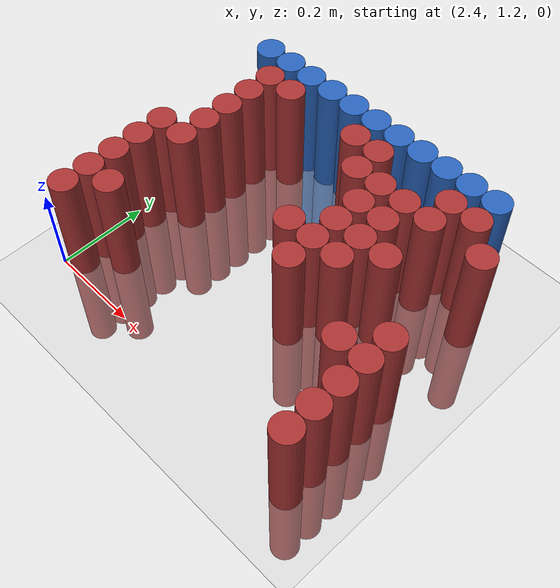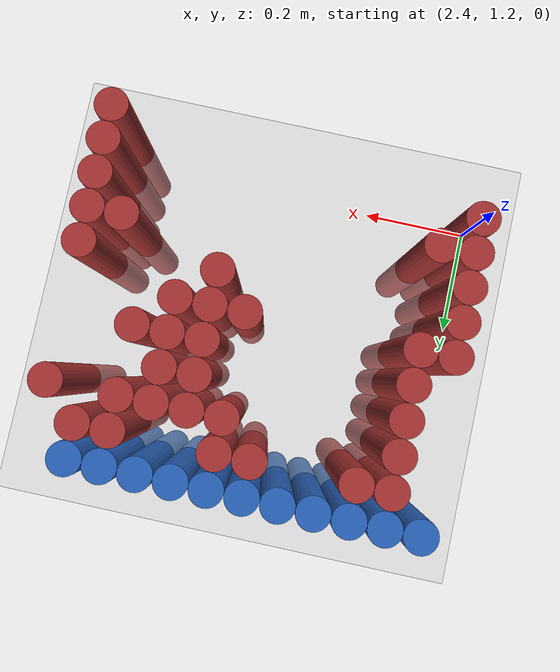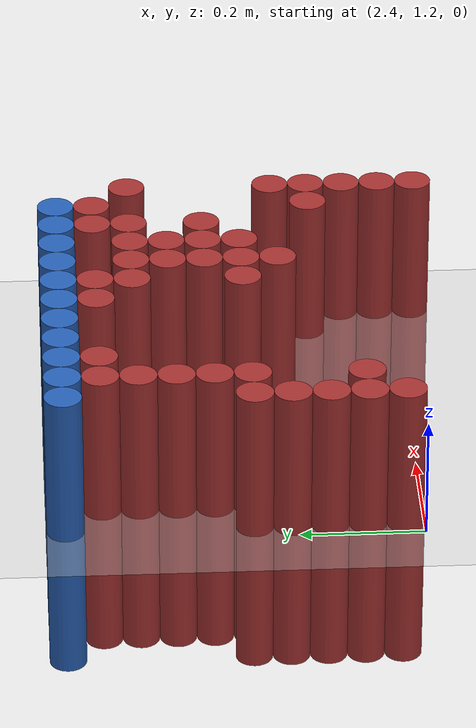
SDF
<sdf version="1.6">
 <world name="default">
  <model name="ground_plane">
   <static>1</static>
   <link name="link">
    <collision name="collision">
     <geometry><plane><normal>0 0 1</normal><size>100 100</size></plane></geometry>
     <surface><friction><ode><mu>100</mu><mu2>50</mu2></ode></friction></surface>
    </collision>
    <visual name="visual">
     <cast_shadows>0</cast_shadows>
     <geometry><plane><normal>0 0 1</normal><size>100 100</size></plane></geometry>
     <material>
      <script><uri>file://media/materials/scripts/gazebo.material</uri><name>Gazebo/Grey</name></script>
     </material>
    </visual>
   </link>
  </model>
  <model name="unit_cylinder_101">
   <static>1</static>
   <pose>2.430000 1.770000 0.000000 0.000000 0.000000 0.000000</pose>
   <link name="link">
    <inertial>
     <mass>1</mass>
     <inertia><ixx>0.145833</ixx><ixy>0</ixy><ixz>0</ixz><iyy>0.145833</iyy><iyz>0</iyz><izz>0.125</izz></inertia>
    </inertial>
    <collision name="collision">
     <geometry><cylinder><radius>0.030000</radius><length>0.5</length></cylinder></geometry>
    </collision>
    <visual name="visual">
     <geometry><cylinder><radius>0.030000</radius><length>0.5</length></cylinder></geometry>
     <material>
      <ambient>0.152000 0.379000 0.720000 1</ambient>
      <diffuse>0.152000 0.379000 0.720000 1</diffuse>
     </material>
     <material>
      <script><name>Gazebo/Grey</name><uri>file://media/materials/scripts/gazebo.material</uri></script>
     </material>
    </visual>
   </link>
  </model>
  <model name="unit_cylinder_102">
   <static>1</static>
   <pose>2.490000 1.770000 0.000000 0.000000 0.000000 0.000000</pose>
   <link name="link">
    <inertial>
     <mass>1</mass>
     <inertia><ixx>0.145833</ixx><ixy>0</ixy><ixz>0</ixz><iyy>0.145833</iyy><iyz>0</iyz><izz>0.125</izz></inertia>
    </inertial>
    <collision name="collision">
     <geometry><cylinder><radius>0.030000</radius><length>0.5</length></cylinder></geometry>
    </collision>
    <visual name="visual">
     <geometry><cylinder><radius>0.030000</radius><length>0.5</length></cylinder></geometry>
     <material>
      <ambient>0.152000 0.379000 0.720000 1</ambient>
      <diffuse>0.152000 0.379000 0.720000 1</diffuse>
     </material>
     <material>
      <script><name>Gazebo/Grey</name><uri>file://media/materials/scripts/gazebo.material</uri></script>
     </material>
    </visual>
   </link>
  </model>
  <model name="unit_cylinder_103">
   <static>1</static>
   <pose>2.550000 1.770000 0.000000 0.000000 0.000000 0.000000</pose>
   <link name="link">
    <inertial>
     <mass>1</mass>
     <inertia><ixx>0.145833</ixx><ixy>0</ixy><ixz>0</ixz><iyy>0.145833</iyy><iyz>0</iyz><izz>0.125</izz></inertia>
    </inertial>
    <collision name="collision">
     <geometry><cylinder><radius>0.030000</radius><length>0.5</length></cylinder></geometry>
    </collision>
    <visual name="visual">
     <geometry><cylinder><radius>0.030000</radius><length>0.5</length></cylinder></geometry>
     <material>
      <ambient>0.152000 0.379000 0.720000 1</ambient>
      <diffuse>0.152000 0.379000 0.720000 1</diffuse>
     </material>
     <material>
      <script><name>Gazebo/Grey</name><uri>file://media/materials/scripts/gazebo.material</uri></script>
     </material>
    </visual>
   </link>
  </model>
  <model name="unit_cylinder_104">
   <static>1</static>
   <pose>2.610000 1.770000 0.000000 0.000000 0.000000 0.000000</pose>
   <link name="link">
    <inertial>
     <mass>1</mass>
     <inertia><ixx>0.145833</ixx><ixy>0</ixy><ixz>0</ixz><iyy>0.145833</iyy><iyz>0</iyz><izz>0.125</izz></inertia>
    </inertial>
    <collision name="collision">
     <geometry><cylinder><radius>0.030000</radius><length>0.5</length></cylinder></geometry>
    </collision>
    <visual name="visual">
     <geometry><cylinder><radius>0.030000</radius><length>0.5</length></cylinder></geometry>
     <material>
      <ambient>0.152000 0.379000 0.720000 1</ambient>
      <diffuse>0.152000 0.379000 0.720000 1</diffuse>
     </material>
     <material>
      <script><name>Gazebo/Grey</name><uri>file://media/materials/scripts/gazebo.material</uri></script>
     </material>
    </visual>
   </link>
  </model>
  <model name="unit_cylinder_105">
   <static>1</static>
   <pose>2.670000 1.770000 0.000000 0.000000 0.000000 0.000000</pose>
   <link name="link">
    <inertial>
     <mass>1</mass>
     <inertia><ixx>0.145833</ixx><ixy>0</ixy><ixz>0</ixz><iyy>0.145833</iyy><iyz>0</iyz><izz>0.125</izz></inertia>
    </inertial>
    <collision name="collision">
     <geometry><cylinder><radius>0.030000</radius><length>0.5</length></cylinder></geometry>
    </collision>
    <visual name="visual">
     <geometry><cylinder><radius>0.030000</radius><length>0.5</length></cylinder></geometry>
     <material>
      <ambient>0.152000 0.379000 0.720000 1</ambient>
      <diffuse>0.152000 0.379000 0.720000 1</diffuse>
     </material>
     <material>
      <script><name>Gazebo/Grey</name><uri>file://media/materials/scripts/gazebo.material</uri></script>
     </material>
    </visual>
   </link>
  </model>
  <model name="unit_cylinder_106">
   <static>1</static>
   <pose>2.730000 1.770000 0.000000 0.000000 0.000000 0.000000</pose>
   <link name="link">
    <inertial>
     <mass>1</mass>
     <inertia><ixx>0.145833</ixx><ixy>0</ixy><ixz>0</ixz><iyy>0.145833</iyy><iyz>0</iyz><izz>0.125</izz></inertia>
    </inertial>
    <collision name="collision">
     <geometry><cylinder><radius>0.030000</radius><length>0.5</length></cylinder></geometry>
    </collision>
    <visual name="visual">
     <geometry><cylinder><radius>0.030000</radius><length>0.5</length></cylinder></geometry>
     <material>
      <ambient>0.152000 0.379000 0.720000 1</ambient>
      <diffuse>0.152000 0.379000 0.720000 1</diffuse>
     </material>
     <material>
      <script><name>Gazebo/Grey</name><uri>file://media/materials/scripts/gazebo.material</uri></script>
     </material>
    </visual>
   </link>
  </model>
  <model name="unit_cylinder_107">
   <static>1</static>
   <pose>2.790000 1.770000 0.000000 0.000000 0.000000 0.000000</pose>
   <link name="link">
    <inertial>
     <mass>1</mass>
     <inertia><ixx>0.145833</ixx><ixy>0</ixy><ixz>0</ixz><iyy>0.145833</iyy><iyz>0</iyz><izz>0.125</izz></inertia>
    </inertial>
    <collision name="collision">
     <geometry><cylinder><radius>0.030000</radius><length>0.5</length></cylinder></geometry>
    </collision>
    <visual name="visual">
     <geometry><cylinder><radius>0.030000</radius><length>0.5</length></cylinder></geometry>
     <material>
      <ambient>0.152000 0.379000 0.720000 1</ambient>
      <diffuse>0.152000 0.379000 0.720000 1</diffuse>
     </material>
     <material>
      <script><name>Gazebo/Grey</name><uri>file://media/materials/scripts/gazebo.material</uri></script>
     </material>
    </visual>
   </link>
  </model>
  <model name="unit_cylinder_108">
   <static>1</static>
   <pose>2.850000 1.770000 0.000000 0.000000 0.000000 0.000000</pose>
   <link name="link">
    <inertial>
     <mass>1</mass>
     <inertia><ixx>0.145833</ixx><ixy>0</ixy><ixz>0</ixz><iyy>0.145833</iyy><iyz>0</iyz><izz>0.125</izz></inertia>
    </inertial>
    <collision name="collision">
     <geometry><cylinder><radius>0.030000</radius><length>0.5</length></cylinder></geometry>
    </collision>
    <visual name="visual">
     <geometry><cylinder><radius>0.030000</radius><length>0.5</length></cylinder></geometry>
     <material>
      <ambient>0.152000 0.379000 0.720000 1</ambient>
      <diffuse>0.152000 0.379000 0.720000 1</diffuse>
     </material>
     <material>
      <script><name>Gazebo/Grey</name><uri>file://media/materials/scripts/gazebo.material</uri></script>
     </material>
    </visual>
   </link>
  </model>
  <model name="unit_cylinder_109">
   <static>1</static>
   <pose>2.910000 1.770000 0.000000 0.000000 0.000000 0.000000</pose>
   <link name="link">
    <inertial>
     <mass>1</mass>
     <inertia><ixx>0.145833</ixx><ixy>0</ixy><ixz>0</ixz><iyy>0.145833</iyy><iyz>0</iyz><izz>0.125</izz></inertia>
    </inertial>
    <collision name="collision">
     <geometry><cylinder><radius>0.030000</radius><length>0.5</length></cylinder></geometry>
    </collision>
    <visual name="visual">
     <geometry><cylinder><radius>0.030000</radius><length>0.5</length></cylinder></geometry>
     <material>
      <ambient>0.152000 0.379000 0.720000 1</ambient>
      <diffuse>0.152000 0.379000 0.720000 1</diffuse>
     </material>
     <material>
      <script><name>Gazebo/Grey</name><uri>file://media/materials/scripts/gazebo.material</uri></script>
     </material>
    </visual>
   </link>
  </model>
  <model name="unit_cylinder_110">
   <static>1</static>
   <pose>2.970000 1.770000 0.000000 0.000000 0.000000 0.000000</pose>
   <link name="link">
    <inertial>
     <mass>1</mass>
     <inertia><ixx>0.145833</ixx><ixy>0</ixy><ixz>0</ixz><iyy>0.145833</iyy><iyz>0</iyz><izz>0.125</izz></inertia>
    </inertial>
    <collision name="collision">
     <geometry><cylinder><radius>0.030000</radius><length>0.5</length></cylinder></geometry>
    </collision>
    <visual name="visual">
     <geometry><cylinder><radius>0.030000</radius><length>0.5</length></cylinder></geometry>
     <material>
      <ambient>0.152000 0.379000 0.720000 1</ambient>
      <diffuse>0.152000 0.379000 0.720000 1</diffuse>
     </material>
     <material>
      <script><name>Gazebo/Grey</name><uri>file://media/materials/scripts/gazebo.material</uri></script>
     </material>
    </visual>
   </link>
  </model>
  <model name="unit_cylinder_111">
   <static>1</static>
   <pose>3.030000 1.770000 0.000000 0.000000 0.000000 0.000000</pose>
   <link name="link">
    <inertial>
     <mass>1</mass>
     <inertia><ixx>0.145833</ixx><ixy>0</ixy><ixz>0</ixz><iyy>0.145833</iyy><iyz>0</iyz><izz>0.125</izz></inertia>
    </inertial>
    <collision name="collision">
     <geometry><cylinder><radius>0.030000</radius><length>0.5</length></cylinder></geometry>
    </collision>
    <visual name="visual">
     <geometry><cylinder><radius>0.030000</radius><length>0.5</length></cylinder></geometry>
     <material>
      <ambient>0.152000 0.379000 0.720000 1</ambient>
      <diffuse>0.152000 0.379000 0.720000 1</diffuse>
     </material>
     <material>
      <script><name>Gazebo/Grey</name><uri>file://media/materials/scripts/gazebo.material</uri></script>
     </material>
    </visual>
   </link>
  </model>
  <model name="unit_cylinder_126">
   <static>1</static>
   <pose>2.490000 1.710000 0.000000 0.000000 0.000000 0.000000</pose>
   <link name="link">
    <inertial>
     <mass>1</mass>
     <inertia><ixx>0.145833</ixx><ixy>0</ixy><ixz>0</ixz><iyy>0.145833</iyy><iyz>0</iyz><izz>0.125</izz></inertia>
    </inertial>
    <collision name="collision">
     <geometry><cylinder><radius>0.030000</radius><length>0.5</length></cylinder></geometry>
    </collision>
    <visual name="visual">
     <geometry><cylinder><radius>0.030000</radius><length>0.5</length></cylinder></geometry>
     <material>
      <ambient>0.648000 0.192000 0.192000 1</ambient>
      <diffuse>0.648000 0.192000 0.192000 1</diffuse>
     </material>
     <material>
      <script><name>Gazebo/Grey</name><uri>file://media/materials/scripts/gazebo.material</uri></script>
     </material>
    </visual>
   </link>
  </model>
  <model name="unit_cylinder_127">
   <static>1</static>
   <pose>2.550000 1.710000 0.000000 0.000000 0.000000 0.000000</pose>
   <link name="link">
    <inertial>
     <mass>1</mass>
     <inertia><ixx>0.145833</ixx><ixy>0</ixy><ixz>0</ixz><iyy>0.145833</iyy><iyz>0</iyz><izz>0.125</izz></inertia>
    </inertial>
    <collision name="collision">
     <geometry><cylinder><radius>0.030000</radius><length>0.5</length></cylinder></geometry>
    </collision>
    <visual name="visual">
     <geometry><cylinder><radius>0.030000</radius><length>0.5</length></cylinder></geometry>
     <material>
      <ambient>0.648000 0.192000 0.192000 1</ambient>
      <diffuse>0.648000 0.192000 0.192000 1</diffuse>
     </material>
     <material>
      <script><name>Gazebo/Grey</name><uri>file://media/materials/scripts/gazebo.material</uri></script>
     </material>
    </visual>
   </link>
  </model>
  <model name="unit_cylinder_128">
   <static>1</static>
   <pose>2.730000 1.710000 0.000000 0.000000 0.000000 0.000000</pose>
   <link name="link">
    <inertial>
     <mass>1</mass>
     <inertia><ixx>0.145833</ixx><ixy>0</ixy><ixz>0</ixz><iyy>0.145833</iyy><iyz>0</iyz><izz>0.125</izz></inertia>
    </inertial>
    <collision name="collision">
     <geometry><cylinder><radius>0.030000</radius><length>0.5</length></cylinder></geometry>
    </collision>
    <visual name="visual">
     <geometry><cylinder><radius>0.030000</radius><length>0.5</length></cylinder></geometry>
     <material>
      <ambient>0.648000 0.192000 0.192000 1</ambient>
      <diffuse>0.648000 0.192000 0.192000 1</diffuse>
     </material>
     <material>
      <script><name>Gazebo/Grey</name><uri>file://media/materials/scripts/gazebo.material</uri></script>
     </material>
    </visual>
   </link>
  </model>
  <model name="unit_cylinder_129">
   <static>1</static>
   <pose>2.790000 1.710000 0.000000 0.000000 0.000000 0.000000</pose>
   <link name="link">
    <inertial>
     <mass>1</mass>
     <inertia><ixx>0.145833</ixx><ixy>0</ixy><ixz>0</ixz><iyy>0.145833</iyy><iyz>0</iyz><izz>0.125</izz></inertia>
    </inertial>
    <collision name="collision">
     <geometry><cylinder><radius>0.030000</radius><length>0.5</length></cylinder></geometry>
    </collision>
    <visual name="visual">
     <geometry><cylinder><radius>0.030000</radius><length>0.5</length></cylinder></geometry>
     <material>
      <ambient>0.648000 0.192000 0.192000 1</ambient>
      <diffuse>0.648000 0.192000 0.192000 1</diffuse>
     </material>
     <material>
      <script><name>Gazebo/Grey</name><uri>file://media/materials/scripts/gazebo.material</uri></script>
     </material>
    </visual>
   </link>
  </model>
  <model name="unit_cylinder_130">
   <static>1</static>
   <pose>2.970000 1.710000 0.000000 0.000000 0.000000 0.000000</pose>
   <link name="link">
    <inertial>
     <mass>1</mass>
     <inertia><ixx>0.145833</ixx><ixy>0</ixy><ixz>0</ixz><iyy>0.145833</iyy><iyz>0</iyz><izz>0.125</izz></inertia>
    </inertial>
    <collision name="collision">
     <geometry><cylinder><radius>0.030000</radius><length>0.5</length></cylinder></geometry>
    </collision>
    <visual name="visual">
     <geometry><cylinder><radius>0.030000</radius><length>0.5</length></cylinder></geometry>
     <material>
      <ambient>0.648000 0.192000 0.192000 1</ambient>
      <diffuse>0.648000 0.192000 0.192000 1</diffuse>
     </material>
     <material>
      <script><name>Gazebo/Grey</name><uri>file://media/materials/scripts/gazebo.material</uri></script>
     </material>
    </visual>
   </link>
  </model>
  <model name="unit_cylinder_131">
   <static>1</static>
   <pose>3.030000 1.710000 0.000000 0.000000 0.000000 0.000000</pose>
   <link name="link">
    <inertial>
     <mass>1</mass>
     <inertia><ixx>0.145833</ixx><ixy>0</ixy><ixz>0</ixz><iyy>0.145833</iyy><iyz>0</iyz><izz>0.125</izz></inertia>
    </inertial>
    <collision name="collision">
     <geometry><cylinder><radius>0.030000</radius><length>0.5</length></cylinder></geometry>
    </collision>
    <visual name="visual">
     <geometry><cylinder><radius>0.030000</radius><length>0.5</length></cylinder></geometry>
     <material>
      <ambient>0.648000 0.192000 0.192000 1</ambient>
      <diffuse>0.648000 0.192000 0.192000 1</diffuse>
     </material>
     <material>
      <script><name>Gazebo/Grey</name><uri>file://media/materials/scripts/gazebo.material</uri></script>
     </material>
    </visual>
   </link>
  </model>
  <model name="unit_cylinder_135">
   <static>1</static>
   <pose>2.490000 1.650000 0.000000 0.000000 0.000000 0.000000</pose>
   <link name="link">
    <inertial>
     <mass>1</mass>
     <inertia><ixx>0.145833</ixx><ixy>0</ixy><ixz>0</ixz><iyy>0.145833</iyy><iyz>0</iyz><izz>0.125</izz></inertia>
    </inertial>
    <collision name="collision">
     <geometry><cylinder><radius>0.030000</radius><length>0.5</length></cylinder></geometry>
    </collision>
    <visual name="visual">
     <geometry><cylinder><radius>0.030000</radius><length>0.5</length></cylinder></geometry>
     <material>
      <ambient>0.648000 0.192000 0.192000 1</ambient>
      <diffuse>0.648000 0.192000 0.192000 1</diffuse>
     </material>
     <material>
      <script><name>Gazebo/Grey</name><uri>file://media/materials/scripts/gazebo.material</uri></script>
     </material>
    </visual>
   </link>
  </model>
  <model name="unit_cylinder_136">
   <static>1</static>
   <pose>2.790000 1.650000 0.000000 0.000000 0.000000 0.000000</pose>
   <link name="link">
    <inertial>
     <mass>1</mass>
     <inertia><ixx>0.145833</ixx><ixy>0</ixy><ixz>0</ixz><iyy>0.145833</iyy><iyz>0</iyz><izz>0.125</izz></inertia>
    </inertial>
    <collision name="collision">
     <geometry><cylinder><radius>0.030000</radius><length>0.5</length></cylinder></geometry>
    </collision>
    <visual name="visual">
     <geometry><cylinder><radius>0.030000</radius><length>0.5</length></cylinder></geometry>
     <material>
      <ambient>0.648000 0.192000 0.192000 1</ambient>
      <diffuse>0.648000 0.192000 0.192000 1</diffuse>
     </material>
     <material>
      <script><name>Gazebo/Grey</name><uri>file://media/materials/scripts/gazebo.material</uri></script>
     </material>
    </visual>
   </link>
  </model>
  <model name="unit_cylinder_137">
   <static>1</static>
   <pose>2.850000 1.650000 0.000000 0.000000 0.000000 0.000000</pose>
   <link name="link">
    <inertial>
     <mass>1</mass>
     <inertia><ixx>0.145833</ixx><ixy>0</ixy><ixz>0</ixz><iyy>0.145833</iyy><iyz>0</iyz><izz>0.125</izz></inertia>
    </inertial>
    <collision name="collision">
     <geometry><cylinder><radius>0.030000</radius><length>0.5</length></cylinder></geometry>
    </collision>
    <visual name="visual">
     <geometry><cylinder><radius>0.030000</radius><length>0.5</length></cylinder></geometry>
     <material>
      <ambient>0.648000 0.192000 0.192000 1</ambient>
      <diffuse>0.648000 0.192000 0.192000 1</diffuse>
     </material>
     <material>
      <script><name>Gazebo/Grey</name><uri>file://media/materials/scripts/gazebo.material</uri></script>
     </material>
    </visual>
   </link>
  </model>
  <model name="unit_cylinder_138">
   <static>1</static>
   <pose>2.910000 1.650000 0.000000 0.000000 0.000000 0.000000</pose>
   <link name="link">
    <inertial>
     <mass>1</mass>
     <inertia><ixx>0.145833</ixx><ixy>0</ixy><ixz>0</ixz><iyy>0.145833</iyy><iyz>0</iyz><izz>0.125</izz></inertia>
    </inertial>
    <collision name="collision">
     <geometry><cylinder><radius>0.030000</radius><length>0.5</length></cylinder></geometry>
    </collision>
    <visual name="visual">
     <geometry><cylinder><radius>0.030000</radius><length>0.5</length></cylinder></geometry>
     <material>
      <ambient>0.648000 0.192000 0.192000 1</ambient>
      <diffuse>0.648000 0.192000 0.192000 1</diffuse>
     </material>
     <material>
      <script><name>Gazebo/Grey</name><uri>file://media/materials/scripts/gazebo.material</uri></script>
     </material>
    </visual>
   </link>
  </model>
  <model name="unit_cylinder_139">
   <static>1</static>
   <pose>2.970000 1.650000 0.000000 0.000000 0.000000 0.000000</pose>
   <link name="link">
    <inertial>
     <mass>1</mass>
     <inertia><ixx>0.145833</ixx><ixy>0</ixy><ixz>0</ixz><iyy>0.145833</iyy><iyz>0</iyz><izz>0.125</izz></inertia>
    </inertial>
    <collision name="collision">
     <geometry><cylinder><radius>0.030000</radius><length>0.5</length></cylinder></geometry>
    </collision>
    <visual name="visual">
     <geometry><cylinder><radius>0.030000</radius><length>0.5</length></cylinder></geometry>
     <material>
      <ambient>0.648000 0.192000 0.192000 1</ambient>
      <diffuse>0.648000 0.192000 0.192000 1</diffuse>
     </material>
     <material>
      <script><name>Gazebo/Grey</name><uri>file://media/materials/scripts/gazebo.material</uri></script>
     </material>
    </visual>
   </link>
  </model>
  <model name="unit_cylinder_140">
   <static>1</static>
   <pose>3.090000 1.650000 0.000000 0.000000 0.000000 0.000000</pose>
   <link name="link">
    <inertial>
     <mass>1</mass>
     <inertia><ixx>0.145833</ixx><ixy>0</ixy><ixz>0</ixz><iyy>0.145833</iyy><iyz>0</iyz><izz>0.125</izz></inertia>
    </inertial>
    <collision name="collision">
     <geometry><cylinder><radius>0.030000</radius><length>0.5</length></cylinder></geometry>
    </collision>
    <visual name="visual">
     <geometry><cylinder><radius>0.030000</radius><length>0.5</length></cylinder></geometry>
     <material>
      <ambient>0.648000 0.192000 0.192000 1</ambient>
      <diffuse>0.648000 0.192000 0.192000 1</diffuse>
     </material>
     <material>
      <script><name>Gazebo/Grey</name><uri>file://media/materials/scripts/gazebo.material</uri></script>
     </material>
    </visual>
   </link>
  </model>
  <model name="unit_cylinder_144">
   <static>1</static>
   <pose>2.490000 1.590000 0.000000 0.000000 0.000000 0.000000</pose>
   <link name="link">
    <inertial>
     <mass>1</mass>
     <inertia><ixx>0.145833</ixx><ixy>0</ixy><ixz>0</ixz><iyy>0.145833</iyy><iyz>0</iyz><izz>0.125</izz></inertia>
    </inertial>
    <collision name="collision">
     <geometry><cylinder><radius>0.030000</radius><length>0.5</length></cylinder></geometry>
    </collision>
    <visual name="visual">
     <geometry><cylinder><radius>0.030000</radius><length>0.5</length></cylinder></geometry>
     <material>
      <ambient>0.648000 0.192000 0.192000 1</ambient>
      <diffuse>0.648000 0.192000 0.192000 1</diffuse>
     </material>
     <material>
      <script><name>Gazebo/Grey</name><uri>file://media/materials/scripts/gazebo.material</uri></script>
     </material>
    </visual>
   </link>
  </model>
  <model name="unit_cylinder_145">
   <static>1</static>
   <pose>2.850000 1.590000 0.000000 0.000000 0.000000 0.000000</pose>
   <link name="link">
    <inertial>
     <mass>1</mass>
     <inertia><ixx>0.145833</ixx><ixy>0</ixy><ixz>0</ixz><iyy>0.145833</iyy><iyz>0</iyz><izz>0.125</izz></inertia>
    </inertial>
    <collision name="collision">
     <geometry><cylinder><radius>0.030000</radius><length>0.5</length></cylinder></geometry>
    </collision>
    <visual name="visual">
     <geometry><cylinder><radius>0.030000</radius><length>0.5</length></cylinder></geometry>
     <material>
      <ambient>0.648000 0.192000 0.192000 1</ambient>
      <diffuse>0.648000 0.192000 0.192000 1</diffuse>
     </material>
     <material>
      <script><name>Gazebo/Grey</name><uri>file://media/materials/scripts/gazebo.material</uri></script>
     </material>
    </visual>
   </link>
  </model>
  <model name="unit_cylinder_146">
   <static>1</static>
   <pose>2.910000 1.590000 0.000000 0.000000 0.000000 0.000000</pose>
   <link name="link">
    <inertial>
     <mass>1</mass>
     <inertia><ixx>0.145833</ixx><ixy>0</ixy><ixz>0</ixz><iyy>0.145833</iyy><iyz>0</iyz><izz>0.125</izz></inertia>
    </inertial>
    <collision name="collision">
     <geometry><cylinder><radius>0.030000</radius><length>0.5</length></cylinder></geometry>
    </collision>
    <visual name="visual">
     <geometry><cylinder><radius>0.030000</radius><length>0.5</length></cylinder></geometry>
     <material>
      <ambient>0.648000 0.192000 0.192000 1</ambient>
      <diffuse>0.648000 0.192000 0.192000 1</diffuse>
     </material>
     <material>
      <script><name>Gazebo/Grey</name><uri>file://media/materials/scripts/gazebo.material</uri></script>
     </material>
    </visual>
   </link>
  </model>
  <model name="unit_cylinder_153">
   <static>1</static>
   <pose>2.490000 1.530000 0.000000 0.000000 0.000000 0.000000</pose>
   <link name="link">
    <inertial>
     <mass>1</mass>
     <inertia><ixx>0.145833</ixx><ixy>0</ixy><ixz>0</ixz><iyy>0.145833</iyy><iyz>0</iyz><izz>0.125</izz></inertia>
    </inertial>
    <collision name="collision">
     <geometry><cylinder><radius>0.030000</radius><length>0.5</length></cylinder></geometry>
    </collision>
    <visual name="visual">
     <geometry><cylinder><radius>0.030000</radius><length>0.5</length></cylinder></geometry>
     <material>
      <ambient>0.648000 0.192000 0.192000 1</ambient>
      <diffuse>0.648000 0.192000 0.192000 1</diffuse>
     </material>
     <material>
      <script><name>Gazebo/Grey</name><uri>file://media/materials/scripts/gazebo.material</uri></script>
     </material>
    </visual>
   </link>
  </model>
  <model name="unit_cylinder_154">
   <static>1</static>
   <pose>2.850000 1.530000 0.000000 0.000000 0.000000 0.000000</pose>
   <link name="link">
    <inertial>
     <mass>1</mass>
     <inertia><ixx>0.145833</ixx><ixy>0</ixy><ixz>0</ixz><iyy>0.145833</iyy><iyz>0</iyz><izz>0.125</izz></inertia>
    </inertial>
    <collision name="collision">
     <geometry><cylinder><radius>0.030000</radius><length>0.5</length></cylinder></geometry>
    </collision>
    <visual name="visual">
     <geometry><cylinder><radius>0.030000</radius><length>0.5</length></cylinder></geometry>
     <material>
      <ambient>0.648000 0.192000 0.192000 1</ambient>
      <diffuse>0.648000 0.192000 0.192000 1</diffuse>
     </material>
     <material>
      <script><name>Gazebo/Grey</name><uri>file://media/materials/scripts/gazebo.material</uri></script>
     </material>
    </visual>
   </link>
  </model>
  <model name="unit_cylinder_155">
   <static>1</static>
   <pose>2.910000 1.530000 0.000000 0.000000 0.000000 0.000000</pose>
   <link name="link">
    <inertial>
     <mass>1</mass>
     <inertia><ixx>0.145833</ixx><ixy>0</ixy><ixz>0</ixz><iyy>0.145833</iyy><iyz>0</iyz><izz>0.125</izz></inertia>
    </inertial>
    <collision name="collision">
     <geometry><cylinder><radius>0.030000</radius><length>0.5</length></cylinder></geometry>
    </collision>
    <visual name="visual">
     <geometry><cylinder><radius>0.030000</radius><length>0.5</length></cylinder></geometry>
     <material>
      <ambient>0.648000 0.192000 0.192000 1</ambient>
      <diffuse>0.648000 0.192000 0.192000 1</diffuse>
     </material>
     <material>
      <script><name>Gazebo/Grey</name><uri>file://media/materials/scripts/gazebo.material</uri></script>
     </material>
    </visual>
   </link>
  </model>
  <model name="unit_cylinder_156">
   <static>1</static>
   <pose>2.970000 1.530000 0.000000 0.000000 0.000000 0.000000</pose>
   <link name="link">
    <inertial>
     <mass>1</mass>
     <inertia><ixx>0.145833</ixx><ixy>0</ixy><ixz>0</ixz><iyy>0.145833</iyy><iyz>0</iyz><izz>0.125</izz></inertia>
    </inertial>
    <collision name="collision">
     <geometry><cylinder><radius>0.030000</radius><length>0.5</length></cylinder></geometry>
    </collision>
    <visual name="visual">
     <geometry><cylinder><radius>0.030000</radius><length>0.5</length></cylinder></geometry>
     <material>
      <ambient>0.648000 0.192000 0.192000 1</ambient>
      <diffuse>0.648000 0.192000 0.192000 1</diffuse>
     </material>
     <material>
      <script><name>Gazebo/Grey</name><uri>file://media/materials/scripts/gazebo.material</uri></script>
     </material>
    </visual>
   </link>
  </model>
  <model name="unit_cylinder_162">
   <static>1</static>
   <pose>2.430000 1.470000 0.000000 0.000000 0.000000 0.000000</pose>
   <link name="link">
    <inertial>
     <mass>1</mass>
     <inertia><ixx>0.145833</ixx><ixy>0</ixy><ixz>0</ixz><iyy>0.145833</iyy><iyz>0</iyz><izz>0.125</izz></inertia>
    </inertial>
    <collision name="collision">
     <geometry><cylinder><radius>0.030000</radius><length>0.5</length></cylinder></geometry>
    </collision>
    <visual name="visual">
     <geometry><cylinder><radius>0.030000</radius><length>0.5</length></cylinder></geometry>
     <material>
      <ambient>0.648000 0.192000 0.192000 1</ambient>
      <diffuse>0.648000 0.192000 0.192000 1</diffuse>
     </material>
     <material>
      <script><name>Gazebo/Grey</name><uri>file://media/materials/scripts/gazebo.material</uri></script>
     </material>
    </visual>
   </link>
  </model>
  <model name="unit_cylinder_163">
   <static>1</static>
   <pose>2.490000 1.470000 0.000000 0.000000 0.000000 0.000000</pose>
   <link name="link">
    <inertial>
     <mass>1</mass>
     <inertia><ixx>0.145833</ixx><ixy>0</ixy><ixz>0</ixz><iyy>0.145833</iyy><iyz>0</iyz><izz>0.125</izz></inertia>
    </inertial>
    <collision name="collision">
     <geometry><cylinder><radius>0.030000</radius><length>0.5</length></cylinder></geometry>
    </collision>
    <visual name="visual">
     <geometry><cylinder><radius>0.030000</radius><length>0.5</length></cylinder></geometry>
     <material>
      <ambient>0.648000 0.192000 0.192000 1</ambient>
      <diffuse>0.648000 0.192000 0.192000 1</diffuse>
     </material>
     <material>
      <script><name>Gazebo/Grey</name><uri>file://media/materials/scripts/gazebo.material</uri></script>
     </material>
    </visual>
   </link>
  </model>
  <model name="unit_cylinder_164">
   <static>1</static>
   <pose>2.790000 1.470000 0.000000 0.000000 0.000000 0.000000</pose>
   <link name="link">
    <inertial>
     <mass>1</mass>
     <inertia><ixx>0.145833</ixx><ixy>0</ixy><ixz>0</ixz><iyy>0.145833</iyy><iyz>0</iyz><izz>0.125</izz></inertia>
    </inertial>
    <collision name="collision">
     <geometry><cylinder><radius>0.030000</radius><length>0.5</length></cylinder></geometry>
    </collision>
    <visual name="visual">
     <geometry><cylinder><radius>0.030000</radius><length>0.5</length></cylinder></geometry>
     <material>
      <ambient>0.648000 0.192000 0.192000 1</ambient>
      <diffuse>0.648000 0.192000 0.192000 1</diffuse>
     </material>
     <material>
      <script><name>Gazebo/Grey</name><uri>file://media/materials/scripts/gazebo.material</uri></script>
     </material>
    </visual>
   </link>
  </model>
  <model name="unit_cylinder_165">
   <static>1</static>
   <pose>2.850000 1.470000 0.000000 0.000000 0.000000 0.000000</pose>
   <link name="link">
    <inertial>
     <mass>1</mass>
     <inertia><ixx>0.145833</ixx><ixy>0</ixy><ixz>0</ixz><iyy>0.145833</iyy><iyz>0</iyz><izz>0.125</izz></inertia>
    </inertial>
    <collision name="collision">
     <geometry><cylinder><radius>0.030000</radius><length>0.5</length></cylinder></geometry>
    </collision>
    <visual name="visual">
     <geometry><cylinder><radius>0.030000</radius><length>0.5</length></cylinder></geometry>
     <material>
      <ambient>0.648000 0.192000 0.192000 1</ambient>
      <diffuse>0.648000 0.192000 0.192000 1</diffuse>
     </material>
     <material>
      <script><name>Gazebo/Grey</name><uri>file://media/materials/scripts/gazebo.material</uri></script>
     </material>
    </visual>
   </link>
  </model>
  <model name="unit_cylinder_166">
   <static>1</static>
   <pose>2.910000 1.470000 0.000000 0.000000 0.000000 0.000000</pose>
   <link name="link">
    <inertial>
     <mass>1</mass>
     <inertia><ixx>0.145833</ixx><ixy>0</ixy><ixz>0</ixz><iyy>0.145833</iyy><iyz>0</iyz><izz>0.125</izz></inertia>
    </inertial>
    <collision name="collision">
     <geometry><cylinder><radius>0.030000</radius><length>0.5</length></cylinder></geometry>
    </collision>
    <visual name="visual">
     <geometry><cylinder><radius>0.030000</radius><length>0.5</length></cylinder></geometry>
     <material>
      <ambient>0.648000 0.192000 0.192000 1</ambient>
      <diffuse>0.648000 0.192000 0.192000 1</diffuse>
     </material>
     <material>
      <script><name>Gazebo/Grey</name><uri>file://media/materials/scripts/gazebo.material</uri></script>
     </material>
    </visual>
   </link>
  </model>
  <model name="unit_cylinder_171">
   <static>1</static>
   <pose>2.430000 1.410000 0.000000 0.000000 0.000000 0.000000</pose>
   <link name="link">
    <inertial>
     <mass>1</mass>
     <inertia><ixx>0.145833</ixx><ixy>0</ixy><ixz>0</ixz><iyy>0.145833</iyy><iyz>0</iyz><izz>0.125</izz></inertia>
    </inertial>
    <collision name="collision">
     <geometry><cylinder><radius>0.030000</radius><length>0.5</length></cylinder></geometry>
    </collision>
    <visual name="visual">
     <geometry><cylinder><radius>0.030000</radius><length>0.5</length></cylinder></geometry>
     <material>
      <ambient>0.648000 0.192000 0.192000 1</ambient>
      <diffuse>0.648000 0.192000 0.192000 1</diffuse>
     </material>
     <material>
      <script><name>Gazebo/Grey</name><uri>file://media/materials/scripts/gazebo.material</uri></script>
     </material>
    </visual>
   </link>
  </model>
  <model name="unit_cylinder_172">
   <static>1</static>
   <pose>2.850000 1.410000 0.000000 0.000000 0.000000 0.000000</pose>
   <link name="link">
    <inertial>
     <mass>1</mass>
     <inertia><ixx>0.145833</ixx><ixy>0</ixy><ixz>0</ixz><iyy>0.145833</iyy><iyz>0</iyz><izz>0.125</izz></inertia>
    </inertial>
    <collision name="collision">
     <geometry><cylinder><radius>0.030000</radius><length>0.5</length></cylinder></geometry>
    </collision>
    <visual name="visual">
     <geometry><cylinder><radius>0.030000</radius><length>0.5</length></cylinder></geometry>
     <material>
      <ambient>0.648000 0.192000 0.192000 1</ambient>
      <diffuse>0.648000 0.192000 0.192000 1</diffuse>
     </material>
     <material>
      <script><name>Gazebo/Grey</name><uri>file://media/materials/scripts/gazebo.material</uri></script>
     </material>
    </visual>
   </link>
  </model>
  <model name="unit_cylinder_173">
   <static>1</static>
   <pose>3.090000 1.410000 0.000000 0.000000 0.000000 0.000000</pose>
   <link name="link">
    <inertial>
     <mass>1</mass>
     <inertia><ixx>0.145833</ixx><ixy>0</ixy><ixz>0</ixz><iyy>0.145833</iyy><iyz>0</iyz><izz>0.125</izz></inertia>
    </inertial>
    <collision name="collision">
     <geometry><cylinder><radius>0.030000</radius><length>0.5</length></cylinder></geometry>
    </collision>
    <visual name="visual">
     <geometry><cylinder><radius>0.030000</radius><length>0.5</length></cylinder></geometry>
     <material>
      <ambient>0.648000 0.192000 0.192000 1</ambient>
      <diffuse>0.648000 0.192000 0.192000 1</diffuse>
     </material>
     <material>
      <script><name>Gazebo/Grey</name><uri>file://media/materials/scripts/gazebo.material</uri></script>
     </material>
    </visual>
   </link>
  </model>
  <model name="unit_cylinder_178">
   <static>1</static>
   <pose>2.430000 1.350000 0.000000 0.000000 0.000000 0.000000</pose>
   <link name="link">
    <inertial>
     <mass>1</mass>
     <inertia><ixx>0.145833</ixx><ixy>0</ixy><ixz>0</ixz><iyy>0.145833</iyy><iyz>0</iyz><izz>0.125</izz></inertia>
    </inertial>
    <collision name="collision">
     <geometry><cylinder><radius>0.030000</radius><length>0.5</length></cylinder></geometry>
    </collision>
    <visual name="visual">
     <geometry><cylinder><radius>0.030000</radius><length>0.5</length></cylinder></geometry>
     <material>
      <ambient>0.648000 0.192000 0.192000 1</ambient>
      <diffuse>0.648000 0.192000 0.192000 1</diffuse>
     </material>
     <material>
      <script><name>Gazebo/Grey</name><uri>file://media/materials/scripts/gazebo.material</uri></script>
     </material>
    </visual>
   </link>
  </model>
  <model name="unit_cylinder_179">
   <static>1</static>
   <pose>3.030000 1.350000 0.000000 0.000000 0.000000 0.000000</pose>
   <link name="link">
    <inertial>
     <mass>1</mass>
     <inertia><ixx>0.145833</ixx><ixy>0</ixy><ixz>0</ixz><iyy>0.145833</iyy><iyz>0</iyz><izz>0.125</izz></inertia>
    </inertial>
    <collision name="collision">
     <geometry><cylinder><radius>0.030000</radius><length>0.5</length></cylinder></geometry>
    </collision>
    <visual name="visual">
     <geometry><cylinder><radius>0.030000</radius><length>0.5</length></cylinder></geometry>
     <material>
      <ambient>0.648000 0.192000 0.192000 1</ambient>
      <diffuse>0.648000 0.192000 0.192000 1</diffuse>
     </material>
     <material>
      <script><name>Gazebo/Grey</name><uri>file://media/materials/scripts/gazebo.material</uri></script>
     </material>
    </visual>
   </link>
  </model>
  <model name="unit_cylinder_180">
   <static>1</static>
   <pose>3.090000 1.350000 0.000000 0.000000 0.000000 0.000000</pose>
   <link name="link">
    <inertial>
     <mass>1</mass>
     <inertia><ixx>0.145833</ixx><ixy>0</ixy><ixz>0</ixz><iyy>0.145833</iyy><iyz>0</iyz><izz>0.125</izz></inertia>
    </inertial>
    <collision name="collision">
     <geometry><cylinder><radius>0.030000</radius><length>0.5</length></cylinder></geometry>
    </collision>
    <visual name="visual">
     <geometry><cylinder><radius>0.030000</radius><length>0.5</length></cylinder></geometry>
     <material>
      <ambient>0.648000 0.192000 0.192000 1</ambient>
      <diffuse>0.648000 0.192000 0.192000 1</diffuse>
     </material>
     <material>
      <script><name>Gazebo/Grey</name><uri>file://media/materials/scripts/gazebo.material</uri></script>
     </material>
    </visual>
   </link>
  </model>
  <model name="unit_cylinder_188">
   <static>1</static>
   <pose>2.430000 1.290000 0.000000 0.000000 0.000000 0.000000</pose>
   <link name="link">
    <inertial>
     <mass>1</mass>
     <inertia><ixx>0.145833</ixx><ixy>0</ixy><ixz>0</ixz><iyy>0.145833</iyy><iyz>0</iyz><izz>0.125</izz></inertia>
    </inertial>
    <collision name="collision">
     <geometry><cylinder><radius>0.030000</radius><length>0.5</length></cylinder></geometry>
    </collision>
    <visual name="visual">
     <geometry><cylinder><radius>0.030000</radius><length>0.5</length></cylinder></geometry>
     <material>
      <ambient>0.648000 0.192000 0.192000 1</ambient>
      <diffuse>0.648000 0.192000 0.192000 1</diffuse>
     </material>
     <material>
      <script><name>Gazebo/Grey</name><uri>file://media/materials/scripts/gazebo.material</uri></script>
     </material>
    </visual>
   </link>
  </model>
  <model name="unit_cylinder_189">
   <static>1</static>
   <pose>2.490000 1.290000 0.000000 0.000000 0.000000 0.000000</pose>
   <link name="link">
    <inertial>
     <mass>1</mass>
     <inertia><ixx>0.145833</ixx><ixy>0</ixy><ixz>0</ixz><iyy>0.145833</iyy><iyz>0</iyz><izz>0.125</izz></inertia>
    </inertial>
    <collision name="collision">
     <geometry><cylinder><radius>0.030000</radius><length>0.5</length></cylinder></geometry>
    </collision>
    <visual name="visual">
     <geometry><cylinder><radius>0.030000</radius><length>0.5</length></cylinder></geometry>
     <material>
      <ambient>0.648000 0.192000 0.192000 1</ambient>
      <diffuse>0.648000 0.192000 0.192000 1</diffuse>
     </material>
     <material>
      <script><name>Gazebo/Grey</name><uri>file://media/materials/scripts/gazebo.material</uri></script>
     </material>
    </visual>
   </link>
  </model>
  <model name="unit_cylinder_190">
   <static>1</static>
   <pose>3.090000 1.290000 0.000000 0.000000 0.000000 0.000000</pose>
   <link name="link">
    <inertial>
     <mass>1</mass>
     <inertia><ixx>0.145833</ixx><ixy>0</ixy><ixz>0</ixz><iyy>0.145833</iyy><iyz>0</iyz><izz>0.125</izz></inertia>
    </inertial>
    <collision name="collision">
     <geometry><cylinder><radius>0.030000</radius><length>0.5</length></cylinder></geometry>
    </collision>
    <visual name="visual">
     <geometry><cylinder><radius>0.030000</radius><length>0.5</length></cylinder></geometry>
     <material>
      <ambient>0.648000 0.192000 0.192000 1</ambient>
      <diffuse>0.648000 0.192000 0.192000 1</diffuse>
     </material>
     <material>
      <script><name>Gazebo/Grey</name><uri>file://media/materials/scripts/gazebo.material</uri></script>
     </material>
    </visual>
   </link>
  </model>
  <model name="unit_cylinder_198">
   <static>1</static>
   <pose>2.430000 1.230000 0.000000 0.000000 0.000000 0.000000</pose>
   <link name="link">
    <inertial>
     <mass>1</mass>
     <inertia><ixx>0.145833</ixx><ixy>0</ixy><ixz>0</ixz><iyy>0.145833</iyy><iyz>0</iyz><izz>0.125</izz></inertia>
    </inertial>
    <collision name="collision">
     <geometry><cylinder><radius>0.030000</radius><length>0.5</length></cylinder></geometry>
    </collision>
    <visual name="visual">
     <geometry><cylinder><radius>0.030000</radius><length>0.5</length></cylinder></geometry>
     <material>
      <ambient>0.648000 0.192000 0.192000 1</ambient>
      <diffuse>0.648000 0.192000 0.192000 1</diffuse>
     </material>
     <material>
      <script><name>Gazebo/Grey</name><uri>file://media/materials/scripts/gazebo.material</uri></script>
     </material>
    </visual>
   </link>
  </model>
  <model name="unit_cylinder_199">
   <static>1</static>
   <pose>3.090000 1.230000 0.000000 0.000000 0.000000 0.000000</pose>
   <link name="link">
    <inertial>
     <mass>1</mass>
     <inertia><ixx>0.145833</ixx><ixy>0</ixy><ixz>0</ixz><iyy>0.145833</iyy><iyz>0</iyz><izz>0.125</izz></inertia>
    </inertial>
    <collision name="collision">
     <geometry><cylinder><radius>0.030000</radius><length>0.5</length></cylinder></geometry>
    </collision>
    <visual name="visual">
     <geometry><cylinder><radius>0.030000</radius><length>0.5</length></cylinder></geometry>
     <material>
      <ambient>0.648000 0.192000 0.192000 1</ambient>
      <diffuse>0.648000 0.192000 0.192000 1</diffuse>
     </material>
     <material>
      <script><name>Gazebo/Grey</name><uri>file://media/materials/scripts/gazebo.material</uri></script>
     </material>
    </visual>
   </link>
  </model>
  <model name="unit_cylinder_201">
   <static>1</static>
   <pose>3.090000 1.170000 0.000000 0.000000 0.000000 0.000000</pose>
   <link name="link">
    <inertial>
     <mass>1</mass>
     <inertia><ixx>0.145833</ixx><ixy>0</ixy><ixz>0</ixz><iyy>0.145833</iyy><iyz>0</iyz><izz>0.125</izz></inertia>
    </inertial>
    <collision name="collision">
     <geometry><cylinder><radius>0.030000</radius><length>0.5</length></cylinder></geometry>
    </collision>
    <visual name="visual">
     <geometry><cylinder><radius>0.030000</radius><length>0.5</length></cylinder></geometry>
     <material>
      <ambient>0.648000 0.192000 0.192000 1</ambient>
      <diffuse>0.648000 0.192000 0.192000 1</diffuse>
     </material>
     <material>
      <script><name>Gazebo/Grey</name><uri>file://media/materials/scripts/gazebo.material</uri></script>
     </material>
    </visual>
   </link>
  </model>
 </world>
</sdf>
